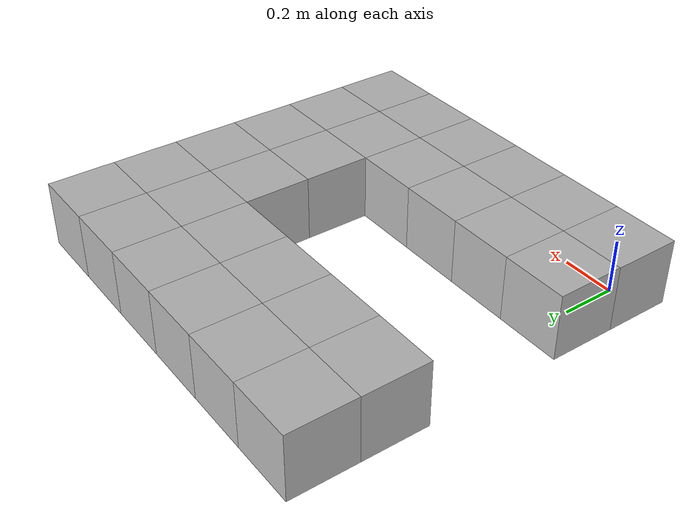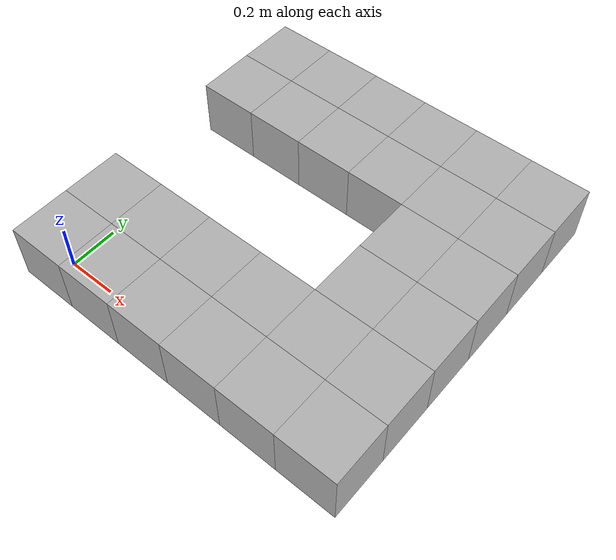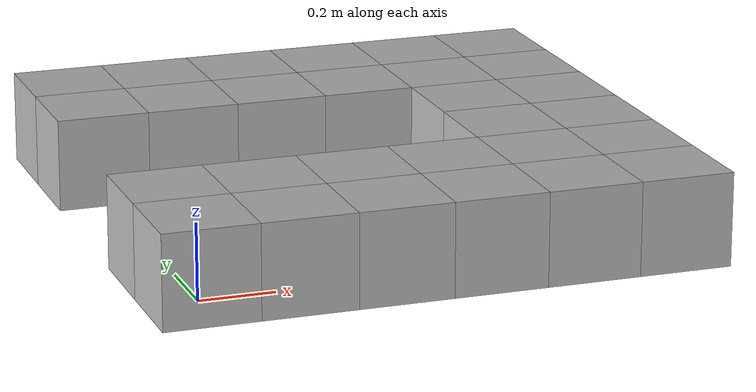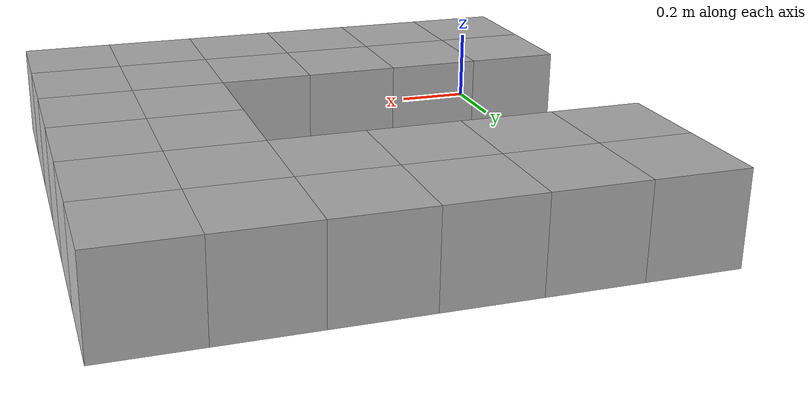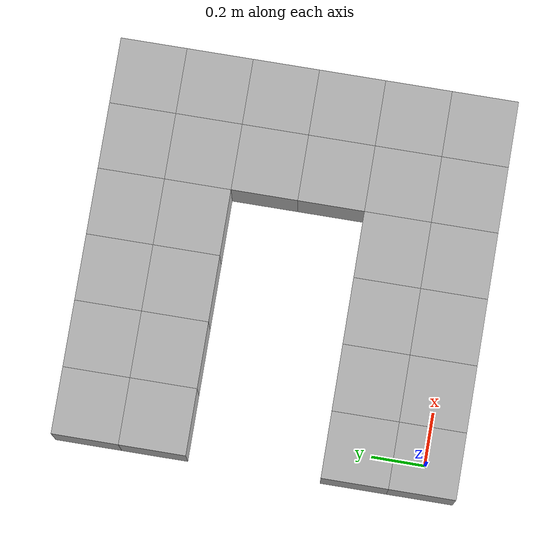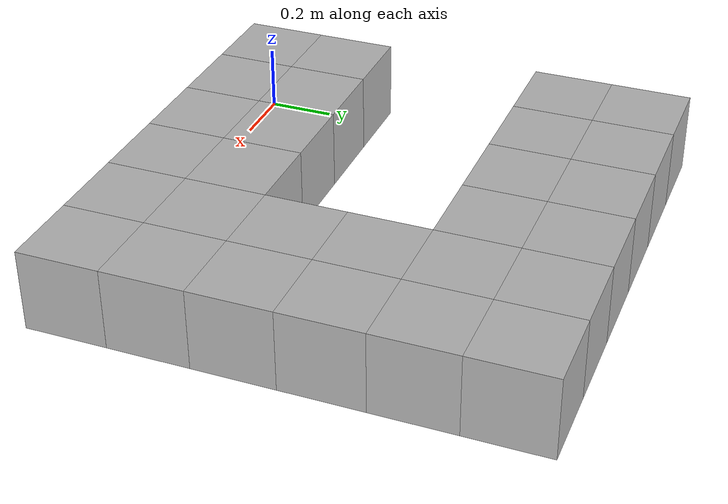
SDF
<?xml version="1.0" ?>

<sdf version="1.4">
  <model name="swarmie_obstacle">
  <static>true</static>
    <link name="box1,1">
      <pose>0 0 0.1 0 0 0</pose>
      <inertial>
        <mass>5</mass>
        <inertia>
          <ixx>0.001</ixx>
          <ixy>0</ixy>
          <ixz>0</ixz>
          <iyy>0.001</iyy>
          <iyz>0</iyz>
          <izz>0.001</izz>
        </inertia>
      </inertial>

      <collision name="collision">
        <geometry>
          <box>
            <size>0.25 0.25 0.25</size>
          </box>
        </geometry>
      </collision>

      <visual name="visual">
        <geometry>
          <box>
            <size>0.25 0.25 0.25</size>
          </box>
        </geometry>
        <material>Gazebo/White</material>
      </visual>
    </link>

    <link name="box1,2">
      <pose>0.25 0 0.1 0 0 0</pose>
      <inertial>
        <mass>5</mass>
        <inertia>
          <ixx>0.001</ixx>
          <ixy>0</ixy>
          <ixz>0</ixz>
          <iyy>0.001</iyy>
          <iyz>0</iyz>
          <izz>0.001</izz>
        </inertia>
      </inertial>

      <collision name="collision">
        <geometry>
          <box>
            <size>0.25 0.25 0.25</size>
          </box>
        </geometry>
      </collision>

      <visual name="visual">
        <geometry>
          <box>
            <size>0.25 0.25 0.25</size>
          </box>
        </geometry>
        <material>Gazebo/White</material>
      </visual>
    </link>

    <link name="box1,3">
      <pose>0.5 0 0.1 0 0 0</pose>
      <inertial>
        <mass>5</mass>
        <inertia>
          <ixx>0.001</ixx>
          <ixy>0</ixy>
          <ixz>0</ixz>
          <iyy>0.001</iyy>
          <iyz>0</iyz>
          <izz>0.001</izz>
        </inertia>
      </inertial>

      <collision name="collision">
        <geometry>
          <box>
            <size>0.25 0.25 0.25</size>
          </box>
        </geometry>
      </collision>

      <visual name="visual">
        <geometry>
          <box>
            <size>0.25 0.25 0.25</size>
          </box>
        </geometry>
        <material>Gazebo/White</material>
      </visual>
    </link>

    <link name="box1,4">
      <pose>0.75 0 0.1 0 0 0</pose>
      <inertial>
        <mass>5</mass>
        <inertia>
          <ixx>0.001</ixx>
          <ixy>0</ixy>
          <ixz>0</ixz>
          <iyy>0.001</iyy>
          <iyz>0</iyz>
          <izz>0.001</izz>
        </inertia>
      </inertial>

      <collision name="collision">
        <geometry>
          <box>
            <size>0.25 0.25 0.25</size>
          </box>
        </geometry>
      </collision>

      <visual name="visual">
        <geometry>
          <box>
            <size>0.25 0.25 0.25</size>
          </box>
        </geometry>
        <material>Gazebo/White</material>
      </visual>
    </link>

    <link name="box1,5">
      <pose>1.0 0 0.1 0 0 0</pose>
      <inertial>
        <mass>5</mass>
        <inertia>
          <ixx>0.001</ixx>
          <ixy>0</ixy>
          <ixz>0</ixz>
          <iyy>0.001</iyy>
          <iyz>0</iyz>
          <izz>0.001</izz>
        </inertia>
      </inertial>

      <collision name="collision">
        <geometry>
          <box>
            <size>0.25 0.25 0.25</size>
          </box>
        </geometry>
      </collision>

      <visual name="visual">
        <geometry>
          <box>
            <size>0.25 0.25 0.25</size>
          </box>
        </geometry>
        <material>Gazebo/White</material>
      </visual>
    </link>

    <link name="box1,6">
      <pose>1.25 0 0.1 0 0 0</pose>
      <inertial>
        <mass>5</mass>
        <inertia>
          <ixx>0.001</ixx>
          <ixy>0</ixy>
          <ixz>0</ixz>
          <iyy>0.001</iyy>
          <iyz>0</iyz>
          <izz>0.001</izz>
        </inertia>
      </inertial>

      <collision name="collision">
        <geometry>
          <box>
            <size>0.25 0.25 0.25</size>
          </box>
        </geometry>
      </collision>

      <visual name="visual">
        <geometry>
          <box>
            <size>0.25 0.25 0.25</size>
          </box>
        </geometry>
        <material>Gazebo/White</material>
      </visual>
    </link>
<!--SECOND ROW-->

    <link name="box2,1">
      <pose>0 0.25 0.1 0 0 0</pose>
      <inertial>
        <mass>5</mass>
        <inertia>
          <ixx>0.001</ixx>
          <ixy>0</ixy>
          <ixz>0</ixz>
          <iyy>0.001</iyy>
          <iyz>0</iyz>
          <izz>0.001</izz>
        </inertia>
      </inertial>

      <collision name="collision">
        <geometry>
          <box>
            <size>0.25 0.25 0.25</size>
          </box>
        </geometry>
      </collision>

      <visual name="visual">
        <geometry>
          <box>
            <size>0.25 0.25 0.25</size>
          </box>
        </geometry>
        <material>Gazebo/White</material>
      </visual>
    </link>

    <link name="box2,2">
      <pose>0.25 0.25 0.1 0 0 0</pose>
      <inertial>
        <mass>5</mass>
        <inertia>
          <ixx>0.001</ixx>
          <ixy>0</ixy>
          <ixz>0</ixz>
          <iyy>0.001</iyy>
          <iyz>0</iyz>
          <izz>0.001</izz>
        </inertia>
      </inertial>

      <collision name="collision">
        <geometry>
          <box>
            <size>0.25 0.25 0.25</size>
          </box>
        </geometry>
      </collision>

      <visual name="visual">
        <geometry>
          <box>
            <size>0.25 0.25 0.25</size>
          </box>
        </geometry>
        <material>Gazebo/White</material>
      </visual>
    </link>

    <link name="box2,3">
      <pose>0.5 0.25 0.1 0 0 0</pose>
      <inertial>
        <mass>5</mass>
        <inertia>
          <ixx>0.001</ixx>
          <ixy>0</ixy>
          <ixz>0</ixz>
          <iyy>0.001</iyy>
          <iyz>0</iyz>
          <izz>0.001</izz>
        </inertia>
      </inertial>

      <collision name="collision">
        <geometry>
          <box>
            <size>0.25 0.25 0.25</size>
          </box>
        </geometry>
      </collision>

      <visual name="visual">
        <geometry>
          <box>
            <size>0.25 0.25 0.25</size>
          </box>
        </geometry>
        <material>Gazebo/White</material>
      </visual>
    </link>

    <link name="box2,4">
      <pose>0.75 0.25 0.1 0 0 0</pose>
      <inertial>
        <mass>5</mass>
        <inertia>
          <ixx>0.001</ixx>
          <ixy>0</ixy>
          <ixz>0</ixz>
          <iyy>0.001</iyy>
          <iyz>0</iyz>
          <izz>0.001</izz>
        </inertia>
      </inertial>

      <collision name="collision">
        <geometry>
          <box>
            <size>0.25 0.25 0.25</size>
          </box>
        </geometry>
      </collision>

      <visual name="visual">
        <geometry>
          <box>
            <size>0.25 0.25 0.25</size>
          </box>
        </geometry>
        <material>Gazebo/White</material>
      </visual>
    </link>

    <link name="box2,5">
      <pose>1.0 0.25 0.1 0 0 0</pose>
      <inertial>
        <mass>5</mass>
        <inertia>
          <ixx>0.001</ixx>
          <ixy>0</ixy>
          <ixz>0</ixz>
          <iyy>0.001</iyy>
          <iyz>0</iyz>
          <izz>0.001</izz>
        </inertia>
      </inertial>

      <collision name="collision">
        <geometry>
          <box>
            <size>0.25 0.25 0.25</size>
          </box>
        </geometry>
      </collision>

      <visual name="visual">
        <geometry>
          <box>
            <size>0.25 0.25 0.25</size>
          </box>
        </geometry>
        <material>Gazebo/White</material>
      </visual>
    </link>

    <link name="box2,6">
      <pose>1.25 0.25 0.1 0 0 0</pose>
      <inertial>
        <mass>5</mass>
        <inertia>
          <ixx>0.001</ixx>
          <ixy>0</ixy>
          <ixz>0</ixz>
          <iyy>0.001</iyy>
          <iyz>0</iyz>
          <izz>0.001</izz>
        </inertia>
      </inertial>

      <collision name="collision">
        <geometry>
          <box>
            <size>0.25 0.25 0.25</size>
          </box>
        </geometry>
      </collision>

      <visual name="visual">
        <geometry>
          <box>
            <size>0.25 0.25 0.25</size>
          </box>
        </geometry>
        <material>Gazebo/White</material>
      </visual>
    </link>

<!--Back end first two-->

    <link name="box3,1">
      <pose>1.0 0.5 0.1 0 0 0</pose>
      <inertial>
        <mass>5</mass>
        <inertia>
          <ixx>0.001</ixx>
          <ixy>0</ixy>
          <ixz>0</ixz>
          <iyy>0.001</iyy>
          <iyz>0</iyz>
          <izz>0.001</izz>
        </inertia>
      </inertial>

      <collision name="collision">
        <geometry>
          <box>
            <size>0.25 0.25 0.25</size>
          </box>
        </geometry>
      </collision>

      <visual name="visual">
        <geometry>
          <box>
            <size>0.25 0.25 0.25</size>
          </box>
        </geometry>
        <material>Gazebo/White</material>
      </visual>
    </link>

    <link name="box3,2">
      <pose>1.25 0.5 0.1 0 0 0</pose>
      <inertial>
        <mass>5</mass>
        <inertia>
          <ixx>0.001</ixx>
          <ixy>0</ixy>
          <ixz>0</ixz>
          <iyy>0.001</iyy>
          <iyz>0</iyz>
          <izz>0.001</izz>
        </inertia>
      </inertial>

      <collision name="collision">
        <geometry>
          <box>
            <size>0.25 0.25 0.25</size>
          </box>
        </geometry>
      </collision>

      <visual name="visual">
        <geometry>
          <box>
            <size>0.25 0.25 0.25</size>
          </box>
        </geometry>
        <material>Gazebo/White</material>
      </visual>
    </link>
<!--Back end second two-->

    <link name="box4,1">
      <pose>1.0 0.75 0.1 0 0 0</pose>
      <inertial>
        <mass>5</mass>
        <inertia>
          <ixx>0.001</ixx>
          <ixy>0</ixy>
          <ixz>0</ixz>
          <iyy>0.001</iyy>
          <iyz>0</iyz>
          <izz>0.001</izz>
        </inertia>
      </inertial>

      <collision name="collision">
        <geometry>
          <box>
            <size>0.25 0.25 0.25</size>
          </box>
        </geometry>
      </collision>

      <visual name="visual">
        <geometry>
          <box>
            <size>0.25 0.25 0.25</size>
          </box>
        </geometry>
        <material>Gazebo/White</material>
      </visual>
    </link>

    <link name="box4,2">
      <pose>1.25 0.75 0.1 0 0 0</pose>
      <inertial>
        <mass>5</mass>
        <inertia>
          <ixx>0.001</ixx>
          <ixy>0</ixy>
          <ixz>0</ixz>
          <iyy>0.001</iyy>
          <iyz>0</iyz>
          <izz>0.001</izz>
        </inertia>
      </inertial>

      <collision name="collision">
        <geometry>
          <box>
            <size>0.25 0.25 0.25</size>
          </box>
        </geometry>
      </collision>

      <visual name="visual">
        <geometry>
          <box>
            <size>0.25 0.25 0.25</size>
          </box>
        </geometry>
        <material>Gazebo/White</material>
      </visual>
    </link>

<!--Row five-->
    <link name="box5,1">
      <pose>0 1.0 0.1 0 0 0</pose>
      <inertial>
        <mass>5</mass>
        <inertia>
          <ixx>0.001</ixx>
          <ixy>0</ixy>
          <ixz>0</ixz>
          <iyy>0.001</iyy>
          <iyz>0</iyz>
          <izz>0.001</izz>
        </inertia>
      </inertial>

      <collision name="collision">
        <geometry>
          <box>
            <size>0.25 0.25 0.25</size>
          </box>
        </geometry>
      </collision>

      <visual name="visual">
        <geometry>
          <box>
            <size>0.25 0.25 0.25</size>
          </box>
        </geometry>
        <material>Gazebo/White</material>
      </visual>
    </link>

    <link name="box5,2">
      <pose>0.25 1 0.1 0 0 0</pose>
      <inertial>
        <mass>5</mass>
        <inertia>
          <ixx>0.001</ixx>
          <ixy>0</ixy>
          <ixz>0</ixz>
          <iyy>0.001</iyy>
          <iyz>0</iyz>
          <izz>0.001</izz>
        </inertia>
      </inertial>

      <collision name="collision">
        <geometry>
          <box>
            <size>0.25 0.25 0.25</size>
          </box>
        </geometry>
      </collision>

      <visual name="visual">
        <geometry>
          <box>
            <size>0.25 0.25 0.25</size>
          </box>
        </geometry>
        <material>Gazebo/White</material>
      </visual>
    </link>

    <link name="box5,3">
      <pose>0.5 1 0.1 0 0 0</pose>
      <inertial>
        <mass>5</mass>
        <inertia>
          <ixx>0.001</ixx>
          <ixy>0</ixy>
          <ixz>0</ixz>
          <iyy>0.001</iyy>
          <iyz>0</iyz>
          <izz>0.001</izz>
        </inertia>
      </inertial>

      <collision name="collision">
        <geometry>
          <box>
            <size>0.25 0.25 0.25</size>
          </box>
        </geometry>
      </collision>

      <visual name="visual">
        <geometry>
          <box>
            <size>0.25 0.25 0.25</size>
          </box>
        </geometry>
        <material>Gazebo/White</material>
      </visual>
    </link>

    <link name="box5,4">
      <pose>0.75 1 0.1 0 0 0</pose>
      <inertial>
        <mass>5</mass>
        <inertia>
          <ixx>0.001</ixx>
          <ixy>0</ixy>
          <ixz>0</ixz>
          <iyy>0.001</iyy>
          <iyz>0</iyz>
          <izz>0.001</izz>
        </inertia>
      </inertial>

      <collision name="collision">
        <geometry>
          <box>
            <size>0.25 0.25 0.25</size>
          </box>
        </geometry>
      </collision>

      <visual name="visual">
        <geometry>
          <box>
            <size>0.25 0.25 0.25</size>
          </box>
        </geometry>
        <material>Gazebo/White</material>
      </visual>
    </link>

    <link name="box5,5">
      <pose>1.0 1 0.1 0 0 0</pose>
      <inertial>
        <mass>5</mass>
        <inertia>
          <ixx>0.001</ixx>
          <ixy>0</ixy>
          <ixz>0</ixz>
          <iyy>0.001</iyy>
          <iyz>0</iyz>
          <izz>0.001</izz>
        </inertia>
      </inertial>

      <collision name="collision">
        <geometry>
          <box>
            <size>0.25 0.25 0.25</size>
          </box>
        </geometry>
      </collision>

      <visual name="visual">
        <geometry>
          <box>
            <size>0.25 0.25 0.25</size>
          </box>
        </geometry>
        <material>Gazebo/White</material>
      </visual>
    </link>

    <link name="box5,6">
      <pose>1.25 1 0.1 0 0 0</pose>
      <inertial>
        <mass>5</mass>
        <inertia>
          <ixx>0.001</ixx>
          <ixy>0</ixy>
          <ixz>0</ixz>
          <iyy>0.001</iyy>
          <iyz>0</iyz>
          <izz>0.001</izz>
        </inertia>
      </inertial>

      <collision name="collision">
        <geometry>
          <box>
            <size>0.25 0.25 0.25</size>
          </box>
        </geometry>
      </collision>

      <visual name="visual">
        <geometry>
          <box>
            <size>0.25 0.25 0.25</size>
          </box>
        </geometry>
        <material>Gazebo/White</material>
      </visual>
    </link>
<!--Row Six-->

    <link name="box6,1">
      <pose>0 1.25 0.1 0 0 0</pose>
      <inertial>
        <mass>5</mass>
        <inertia>
          <ixx>0.001</ixx>
          <ixy>0</ixy>
          <ixz>0</ixz>
          <iyy>0.001</iyy>
          <iyz>0</iyz>
          <izz>0.001</izz>
        </inertia>
      </inertial>

      <collision name="collision">
        <geometry>
          <box>
            <size>0.25 0.25 0.25</size>
          </box>
        </geometry>
      </collision>

      <visual name="visual">
        <geometry>
          <box>
            <size>0.25 0.25 0.25</size>
          </box>
        </geometry>
        <material>Gazebo/White</material>
      </visual>
    </link>

    <link name="box6,2">
      <pose>0.25 1.25 0.1 0 0 0</pose>
      <inertial>
        <mass>5</mass>
        <inertia>
          <ixx>0.001</ixx>
          <ixy>0</ixy>
          <ixz>0</ixz>
          <iyy>0.001</iyy>
          <iyz>0</iyz>
          <izz>0.001</izz>
        </inertia>
      </inertial>

      <collision name="collision">
        <geometry>
          <box>
            <size>0.25 0.25 0.25</size>
          </box>
        </geometry>
      </collision>

      <visual name="visual">
        <geometry>
          <box>
            <size>0.25 0.25 0.25</size>
          </box>
        </geometry>
        <material>Gazebo/White</material>
      </visual>
    </link>

    <link name="box6,3">
      <pose>0.5 1.25 0.1 0 0 0</pose>
      <inertial>
        <mass>5</mass>
        <inertia>
          <ixx>0.001</ixx>
          <ixy>0</ixy>
          <ixz>0</ixz>
          <iyy>0.001</iyy>
          <iyz>0</iyz>
          <izz>0.001</izz>
        </inertia>
      </inertial>

      <collision name="collision">
        <geometry>
          <box>
            <size>0.25 0.25 0.25</size>
          </box>
        </geometry>
      </collision>

      <visual name="visual">
        <geometry>
          <box>
            <size>0.25 0.25 0.25</size>
          </box>
        </geometry>
        <material>Gazebo/White</material>
      </visual>
    </link>

    <link name="box6,4">
      <pose>0.75 1.25 0.1 0 0 0</pose>
      <inertial>
        <mass>5</mass>
        <inertia>
          <ixx>0.001</ixx>
          <ixy>0</ixy>
          <ixz>0</ixz>
          <iyy>0.001</iyy>
          <iyz>0</iyz>
          <izz>0.001</izz>
        </inertia>
      </inertial>

      <collision name="collision">
        <geometry>
          <box>
            <size>0.25 0.25 0.25</size>
          </box>
        </geometry>
      </collision>

      <visual name="visual">
        <geometry>
          <box>
            <size>0.25 0.25 0.25</size>
          </box>
        </geometry>
        <material>Gazebo/White</material>
      </visual>
    </link>

    <link name="box6,5">
      <pose>1.0 1.25 0.1 0 0 0</pose>
      <inertial>
        <mass>5</mass>
        <inertia>
          <ixx>0.001</ixx>
          <ixy>0</ixy>
          <ixz>0</ixz>
          <iyy>0.001</iyy>
          <iyz>0</iyz>
          <izz>0.001</izz>
        </inertia>
      </inertial>

      <collision name="collision">
        <geometry>
          <box>
            <size>0.25 0.25 0.25</size>
          </box>
        </geometry>
      </collision>

      <visual name="visual">
        <geometry>
          <box>
            <size>0.25 0.25 0.25</size>
          </box>
        </geometry>
        <material>Gazebo/White</material>
      </visual>
    </link>

    <link name="box6,6">
      <pose>1.25 1.25 0.1 0 0 0</pose>
      <inertial>
        <mass>5</mass>
        <inertia>
          <ixx>0.001</ixx>
          <ixy>0</ixy>
          <ixz>0</ixz>
          <iyy>0.001</iyy>
          <iyz>0</iyz>
          <izz>0.001</izz>
        </inertia>
      </inertial>

      <collision name="collision">
        <geometry>
          <box>
            <size>0.25 0.25 0.25</size>
          </box>
        </geometry>
      </collision>

      <visual name="visual">
        <geometry>
          <box>
            <size>0.25 0.25 0.25</size>
          </box>
        </geometry>
        <material>Gazebo/White</material>
      </visual>
    </link>
<!--end links -->

  </model>
</sdf>
